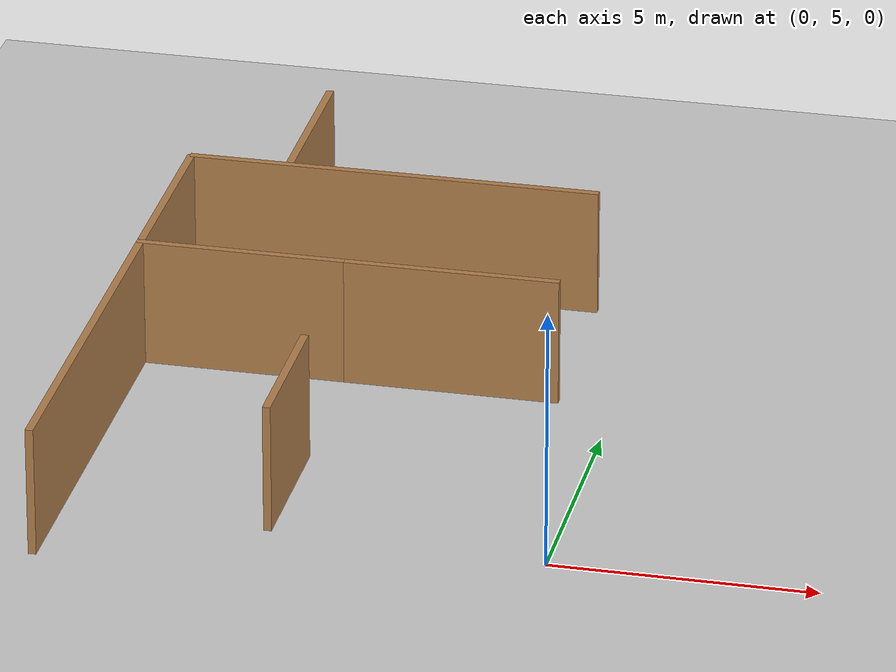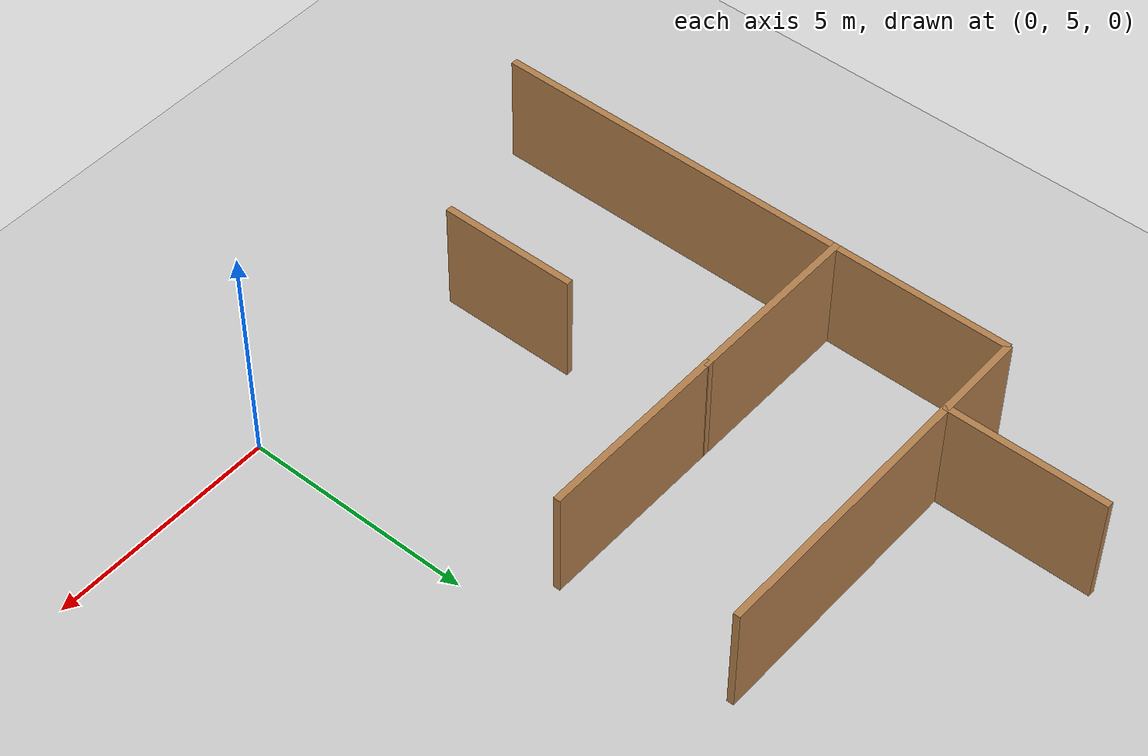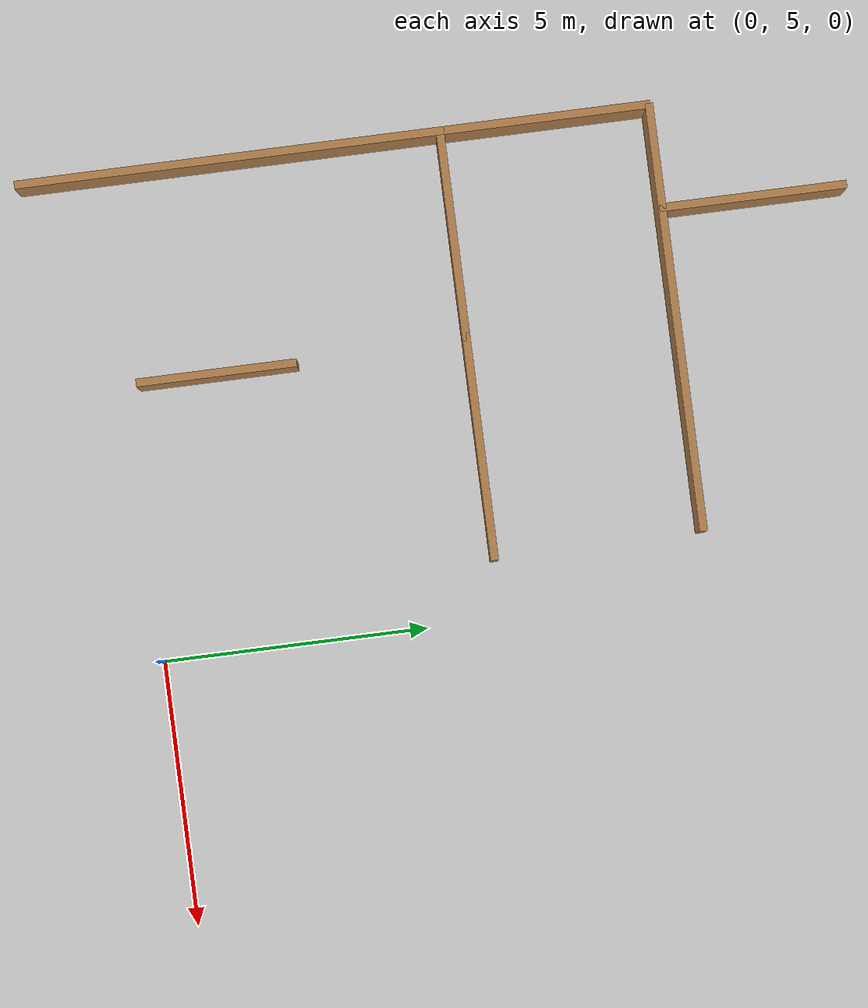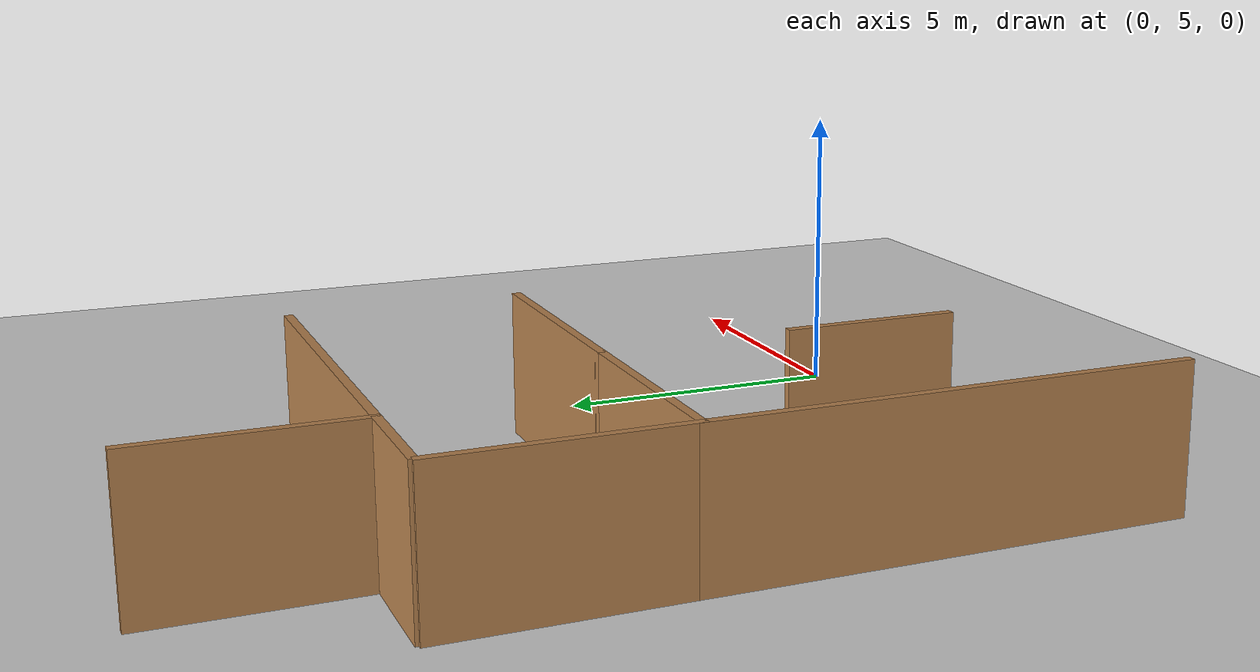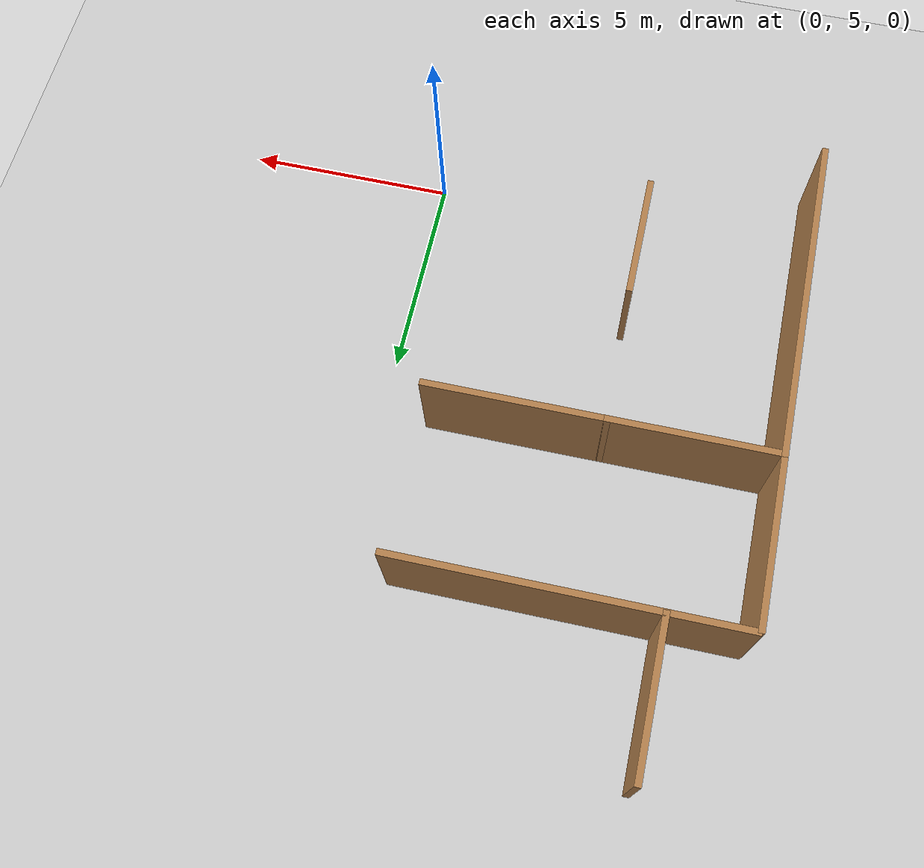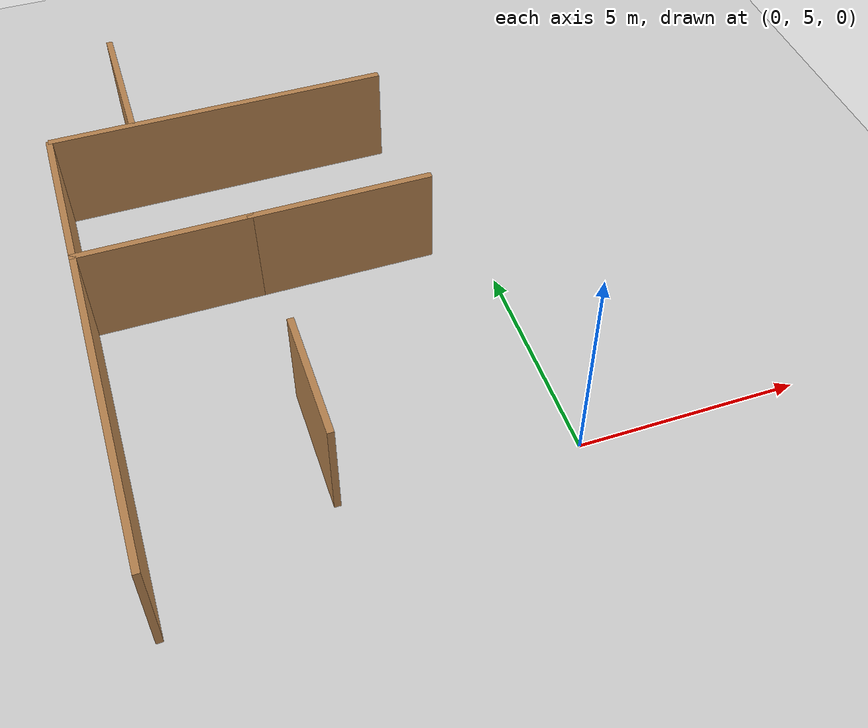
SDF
<sdf version="1.6">
 <world name="default">
  <model name="ground_plane">
   <static>1</static>
   <link name="link">
    <collision name="collision">
     <geometry><plane><normal>0 0 1</normal><size>100 100</size></plane></geometry>
     <surface><friction><ode><mu>100</mu><mu2>50</mu2></ode></friction></surface>
    </collision>
    <visual name="visual">
     <cast_shadows>0</cast_shadows>
     <geometry><plane><normal>0 0 1</normal><size>100 100</size></plane></geometry>
     <material>
      <script><uri>file://media/materials/scripts/gazebo.material</uri><name>Gazebo/Grey</name></script>
     </material>
    </visual>
   </link>
  </model>
  <model name="myHouse">
   <link name="Wall_10">
    <pose>-5.63978 0.790812 0 0 -0 1.5708</pose>
    <visual name="Wall_10_Visual">
     <pose>0 0 1.25 0 -0 0</pose>
     <geometry><box><size>8.02625 0.15 2.5</size></box></geometry>
     <material>
      <script><uri>file://media/materials/scripts/gazebo.material</uri><name>Gazebo/Wood</name></script>
      <ambient>1 1 1 1</ambient>
      <diffuse>1 1 1 1</diffuse>
      <specular>0.2 0.2 0.2 1</specular>
      <emissive>0 0 0 1</emissive>
     </material>
     <meta><layer>0</layer></meta>
    </visual>
    <collision name="Wall_10_Collision">
     <pose>0 0 1.25 0 -0 0</pose>
     <geometry><box><size>8.02625 0.15 2.5</size></box></geometry>
     <surface>
      <friction>
       <ode><mu>1</mu><mu2>1</mu2><fdir1>0 0 0</fdir1><slip1>0</slip1><slip2>0</slip2></ode>
       <torsional>
        <coefficient>1</coefficient>
        <patch_radius>0</patch_radius>
        <surface_radius>0</surface_radius>
        <use_patch_radius>1</use_patch_radius>
        <ode><slip>0</slip></ode>
       </torsional>
      </friction>
      <bounce><restitution_coefficient>0</restitution_coefficient><threshold>1e+06</threshold></bounce>
      <contact>
       <collide_without_contact>0</collide_without_contact>
       <collide_without_contact_bitmask>1</collide_without_contact_bitmask>
       <collide_bitmask>1</collide_bitmask>
       <ode>
        <soft_cfm>0</soft_cfm>
        <soft_erp>0.2</soft_erp>
        <kp>1e+13</kp>
        <kd>1</kd>
        <max_vel>0.01</max_vel>
        <min_depth>0</min_depth>
       </ode>
       <bullet>
        <split_impulse>1</split_impulse>
        <split_impulse_penetration_threshold>-0.01</split_impulse_penetration_threshold>
        <soft_cfm>0</soft_cfm>
        <soft_erp>0.2</soft_erp>
        <kp>1e+13</kp>
        <kd>1</kd>
       </bullet>
      </contact>
     </surface>
    </collision>
   </link>
   <link name="Wall_27">
    <pose>-1.71655 0.054366 0 0 -0 1.5708</pose>
    <visual name="Wall_27_Visual">
     <pose>0 0 1.25 0 -0 0</pose>
     <geometry><box><size>3 0.15 2.5</size></box></geometry>
     <material>
      <script><uri>file://media/materials/scripts/gazebo.material</uri><name>Gazebo/Wood</name></script>
      <ambient>1 1 1 1</ambient>
      <diffuse>1 1 1 1</diffuse>
      <specular>0.2 0.2 0.2 1</specular>
      <emissive>0 0 0 1</emissive>
     </material>
     <meta><layer>0</layer></meta>
    </visual>
    <collision name="Wall_27_Collision">
     <pose>0 0 1.25 0 -0 0</pose>
     <geometry><box><size>3 0.15 2.5</size></box></geometry>
     <surface>
      <friction>
       <ode><mu>1</mu><mu2>1</mu2><fdir1>0 0 0</fdir1><slip1>0</slip1><slip2>0</slip2></ode>
       <torsional>
        <coefficient>1</coefficient>
        <patch_radius>0</patch_radius>
        <surface_radius>0</surface_radius>
        <use_patch_radius>1</use_patch_radius>
        <ode><slip>0</slip></ode>
       </torsional>
      </friction>
      <bounce><restitution_coefficient>0</restitution_coefficient><threshold>1e+06</threshold></bounce>
      <contact>
       <collide_without_contact>0</collide_without_contact>
       <collide_without_contact_bitmask>1</collide_without_contact_bitmask>
       <collide_bitmask>1</collide_bitmask>
       <ode>
        <soft_cfm>0</soft_cfm>
        <soft_erp>0.2</soft_erp>
        <kp>1e+13</kp>
        <kd>1</kd>
        <max_vel>0.01</max_vel>
        <min_depth>0</min_depth>
       </ode>
       <bullet>
        <split_impulse>1</split_impulse>
        <split_impulse_penetration_threshold>-0.01</split_impulse_penetration_threshold>
        <soft_cfm>0</soft_cfm>
        <soft_erp>0.2</soft_erp>
        <kp>1e+13</kp>
        <kd>1</kd>
       </bullet>
      </contact>
     </surface>
    </collision>
   </link>
   <link name="Wall_37">
    <pose>-3.71478 4.72896 0 0 -0 0.000116</pose>
    <visual name="Wall_37_Visual">
     <pose>0 0 1.25 0 -0 0</pose>
     <geometry><box><size>4 0.15 2.5</size></box></geometry>
     <material>
      <script><uri>file://media/materials/scripts/gazebo.material</uri><name>Gazebo/Wood</name></script>
      <ambient>1 1 1 1</ambient>
      <diffuse>1 1 1 1</diffuse>
      <specular>0.2 0.2 0.2 1</specular>
      <emissive>0 0 0 1</emissive>
     </material>
     <meta><layer>0</layer></meta>
    </visual>
    <collision name="Wall_37_Collision">
     <pose>0 0 1.25 0 -0 0</pose>
     <geometry><box><size>4 0.15 2.5</size></box></geometry>
     <surface>
      <friction>
       <ode><mu>1</mu><mu2>1</mu2><fdir1>0 0 0</fdir1><slip1>0</slip1><slip2>0</slip2></ode>
       <torsional>
        <coefficient>1</coefficient>
        <patch_radius>0</patch_radius>
        <surface_radius>0</surface_radius>
        <use_patch_radius>1</use_patch_radius>
        <ode><slip>0</slip></ode>
       </torsional>
      </friction>
      <bounce><restitution_coefficient>0</restitution_coefficient><threshold>1e+06</threshold></bounce>
      <contact>
       <collide_without_contact>0</collide_without_contact>
       <collide_without_contact_bitmask>1</collide_without_contact_bitmask>
       <collide_bitmask>1</collide_bitmask>
       <ode>
        <soft_cfm>0</soft_cfm>
        <soft_erp>0.2</soft_erp>
        <kp>1e+13</kp>
        <kd>1</kd>
        <max_vel>0.01</max_vel>
        <min_depth>0</min_depth>
       </ode>
       <bullet>
        <split_impulse>1</split_impulse>
        <split_impulse_penetration_threshold>-0.01</split_impulse_penetration_threshold>
        <soft_cfm>0</soft_cfm>
        <soft_erp>0.2</soft_erp>
        <kp>1e+13</kp>
        <kd>1</kd>
       </bullet>
      </contact>
     </surface>
    </collision>
   </link>
   <link name="Wall_38">
    <pose>0.260223 4.72919 0 0 -0 0</pose>
    <visual name="Wall_38_Visual">
     <pose>0 0 1.25 0 -0 0</pose>
     <geometry><box><size>4.25 0.15 2.5</size></box></geometry>
     <material>
      <script><uri>file://media/materials/scripts/gazebo.material</uri><name>Gazebo/Wood</name></script>
      <ambient>1 1 1 1</ambient>
      <diffuse>1 1 1 1</diffuse>
      <specular>0.2 0.2 0.2 1</specular>
      <emissive>0 0 0 1</emissive>
     </material>
     <meta><layer>0</layer></meta>
    </visual>
    <collision name="Wall_38_Collision">
     <pose>0 0 1.25 0 -0 0</pose>
     <geometry><box><size>4.25 0.15 2.5</size></box></geometry>
     <surface>
      <friction>
       <ode><mu>1</mu><mu2>1</mu2><fdir1>0 0 0</fdir1><slip1>0</slip1><slip2>0</slip2></ode>
       <torsional>
        <coefficient>1</coefficient>
        <patch_radius>0</patch_radius>
        <surface_radius>0</surface_radius>
        <use_patch_radius>1</use_patch_radius>
        <ode><slip>0</slip></ode>
       </torsional>
      </friction>
      <bounce><restitution_coefficient>0</restitution_coefficient><threshold>1e+06</threshold></bounce>
      <contact>
       <collide_without_contact>0</collide_without_contact>
       <collide_without_contact_bitmask>1</collide_without_contact_bitmask>
       <collide_bitmask>1</collide_bitmask>
       <ode>
        <soft_cfm>0</soft_cfm>
        <soft_erp>0.2</soft_erp>
        <kp>1e+13</kp>
        <kd>1</kd>
        <max_vel>0.01</max_vel>
        <min_depth>0</min_depth>
       </ode>
       <bullet>
        <split_impulse>1</split_impulse>
        <split_impulse_penetration_threshold>-0.01</split_impulse_penetration_threshold>
        <soft_cfm>0</soft_cfm>
        <soft_erp>0.2</soft_erp>
        <kp>1e+13</kp>
        <kd>1</kd>
       </bullet>
      </contact>
     </surface>
    </collision>
   </link>
   <link name="Wall_41">
    <pose>-1.66015 8.63454 0 0 0 -3.14154</pose>
    <visual name="Wall_41_Visual">
     <pose>0 0 1.25 0 -0 0</pose>
     <geometry><box><size>8 0.15 2.5</size></box></geometry>
     <material>
      <script><uri>file://media/materials/scripts/gazebo.material</uri><name>Gazebo/Wood</name></script>
      <ambient>0.921569 0.807843 0.615686 1</ambient>
      <diffuse>1 1 1 1</diffuse>
      <specular>0.2 0.2 0.2 1</specular>
      <emissive>0 0 0 1</emissive>
     </material>
     <meta><layer>0</layer></meta>
    </visual>
    <collision name="Wall_41_Collision">
     <pose>0 0 1.25 0 -0 0</pose>
     <geometry><box><size>8 0.15 2.5</size></box></geometry>
     <surface>
      <friction>
       <ode><mu>1</mu><mu2>1</mu2><fdir1>0 0 0</fdir1><slip1>0</slip1><slip2>0</slip2></ode>
       <torsional>
        <coefficient>1</coefficient>
        <patch_radius>0</patch_radius>
        <surface_radius>0</surface_radius>
        <use_patch_radius>1</use_patch_radius>
        <ode><slip>0</slip></ode>
       </torsional>
      </friction>
      <bounce><restitution_coefficient>0</restitution_coefficient><threshold>1e+06</threshold></bounce>
      <contact>
       <collide_without_contact>0</collide_without_contact>
       <collide_without_contact_bitmask>1</collide_without_contact_bitmask>
       <collide_bitmask>1</collide_bitmask>
       <ode>
        <soft_cfm>0</soft_cfm>
        <soft_erp>0.2</soft_erp>
        <kp>1e+13</kp>
        <kd>1</kd>
        <max_vel>0.01</max_vel>
        <min_depth>0</min_depth>
       </ode>
       <bullet>
        <split_impulse>1</split_impulse>
        <split_impulse_penetration_threshold>-0.01</split_impulse_penetration_threshold>
        <soft_cfm>0</soft_cfm>
        <soft_erp>0.2</soft_erp>
        <kp>1e+13</kp>
        <kd>1</kd>
       </bullet>
      </contact>
     </surface>
    </collision>
   </link>
   <link name="Wall_44">
    <pose>-5.63978 6.65374 0 0 -0 1.5708</pose>
    <visual name="Wall_44_Visual">
     <pose>0 0 1.25 0 -0 0</pose>
     <geometry><box><size>4 0.15 2.5</size></box></geometry>
     <material>
      <script><uri>file://media/materials/scripts/gazebo.material</uri><name>Gazebo/Wood</name></script>
      <ambient>1 1 1 1</ambient>
      <diffuse>1 1 1 1</diffuse>
      <specular>0.2 0.2 0.2 1</specular>
      <emissive>0 0 0 1</emissive>
     </material>
     <meta><layer>0</layer></meta>
    </visual>
    <collision name="Wall_44_Collision">
     <pose>0 0 1.25 0 -0 0</pose>
     <geometry><box><size>4 0.15 2.5</size></box></geometry>
     <surface>
      <friction>
       <ode><mu>1</mu><mu2>1</mu2><fdir1>0 0 0</fdir1><slip1>0</slip1><slip2>0</slip2></ode>
       <torsional>
        <coefficient>1</coefficient>
        <patch_radius>0</patch_radius>
        <surface_radius>0</surface_radius>
        <use_patch_radius>1</use_patch_radius>
        <ode><slip>0</slip></ode>
       </torsional>
      </friction>
      <bounce><restitution_coefficient>0</restitution_coefficient><threshold>1e+06</threshold></bounce>
      <contact>
       <collide_without_contact>0</collide_without_contact>
       <collide_without_contact_bitmask>1</collide_without_contact_bitmask>
       <collide_bitmask>1</collide_bitmask>
       <ode>
        <soft_cfm>0</soft_cfm>
        <soft_erp>0.2</soft_erp>
        <kp>1e+13</kp>
        <kd>1</kd>
        <max_vel>0.01</max_vel>
        <min_depth>0</min_depth>
       </ode>
       <bullet>
        <split_impulse>1</split_impulse>
        <split_impulse_penetration_threshold>-0.01</split_impulse_penetration_threshold>
        <soft_cfm>0</soft_cfm>
        <soft_erp>0.2</soft_erp>
        <kp>1e+13</kp>
        <kd>1</kd>
       </bullet>
      </contact>
     </surface>
    </collision>
   </link>
   <link name="Wall_46">
    <pose>-3.70991 10.3295 0 0 -0 1.5708</pose>
    <visual name="Wall_46_Visual">
     <pose>0 0 1.25 0 -0 0</pose>
     <geometry><box><size>3.5 0.15 2.5</size></box></geometry>
     <material>
      <script><uri>file://media/materials/scripts/gazebo.material</uri><name>Gazebo/Wood</name></script>
      <ambient>1 1 1 1</ambient>
      <diffuse>1 1 1 1</diffuse>
      <specular>0.2 0.2 0.2 1</specular>
      <emissive>0 0 0 1</emissive>
     </material>
     <meta><layer>0</layer></meta>
    </visual>
    <collision name="Wall_46_Collision">
     <pose>0 0 1.25 0 -0 0</pose>
     <geometry><box><size>3.5 0.15 2.5</size></box></geometry>
     <surface>
      <friction>
       <ode><mu>1</mu><mu2>1</mu2><fdir1>0 0 0</fdir1><slip1>0</slip1><slip2>0</slip2></ode>
       <torsional>
        <coefficient>1</coefficient>
        <patch_radius>0</patch_radius>
        <surface_radius>0</surface_radius>
        <use_patch_radius>1</use_patch_radius>
        <ode><slip>0</slip></ode>
       </torsional>
      </friction>
      <bounce><restitution_coefficient>0</restitution_coefficient><threshold>1e+06</threshold></bounce>
      <contact>
       <collide_without_contact>0</collide_without_contact>
       <collide_without_contact_bitmask>1</collide_without_contact_bitmask>
       <collide_bitmask>1</collide_bitmask>
       <ode>
        <soft_cfm>0</soft_cfm>
        <soft_erp>0.2</soft_erp>
        <kp>1e+13</kp>
        <kd>1</kd>
        <max_vel>0.01</max_vel>
        <min_depth>0</min_depth>
       </ode>
       <bullet>
        <split_impulse>1</split_impulse>
        <split_impulse_penetration_threshold>-0.01</split_impulse_penetration_threshold>
        <soft_cfm>0</soft_cfm>
        <soft_erp>0.2</soft_erp>
        <kp>1e+13</kp>
        <kd>1</kd>
       </bullet>
      </contact>
     </surface>
    </collision>
   </link>
   <static>1</static>
   <pose>-3.47025 6.64899 0 0 -0 0</pose>
  </model>
 </world>
</sdf>
